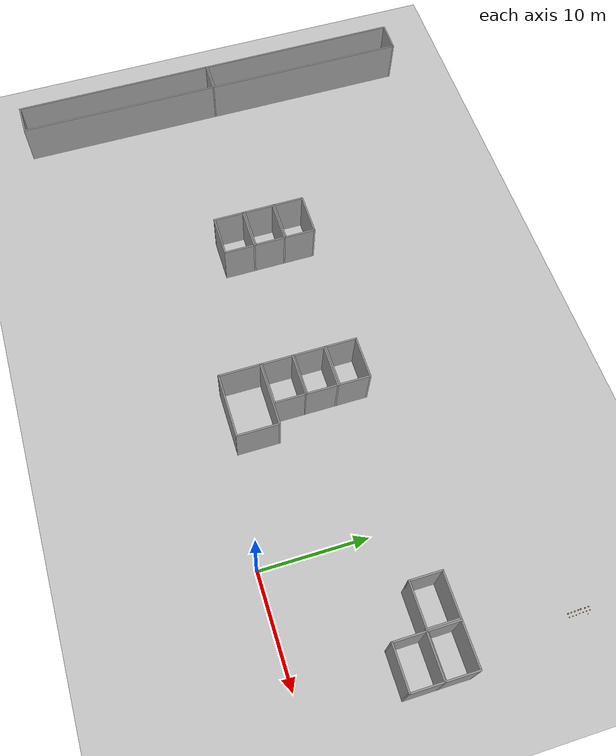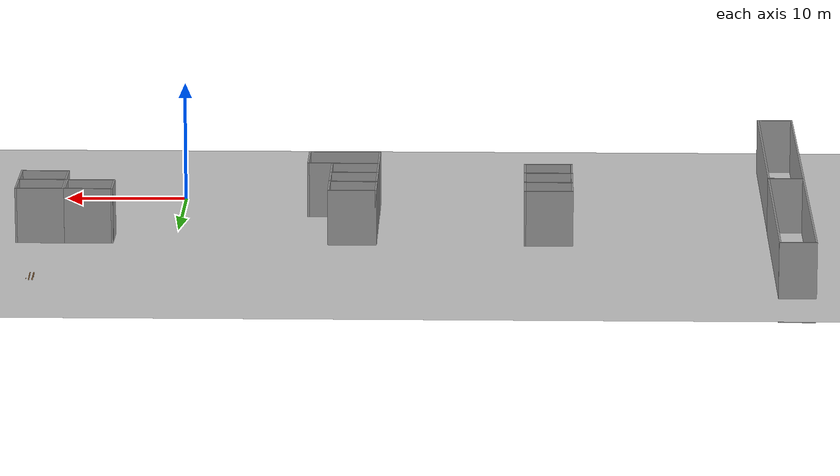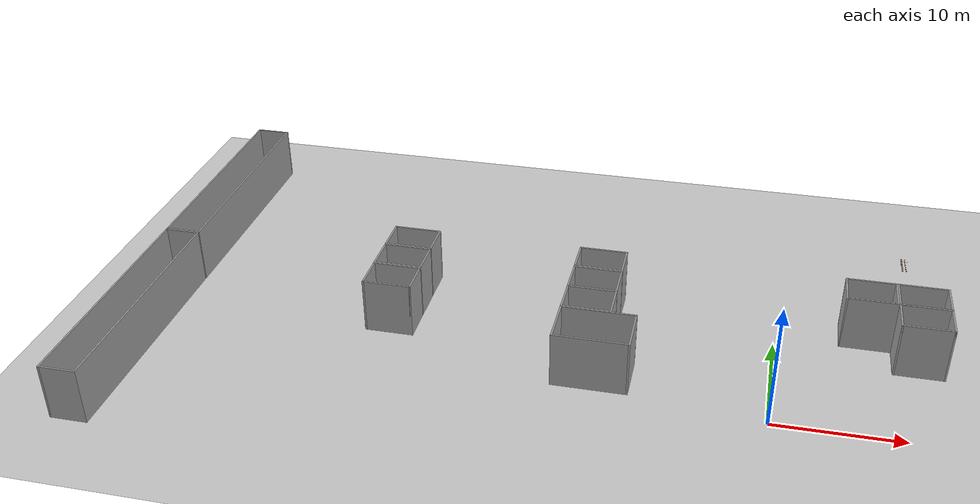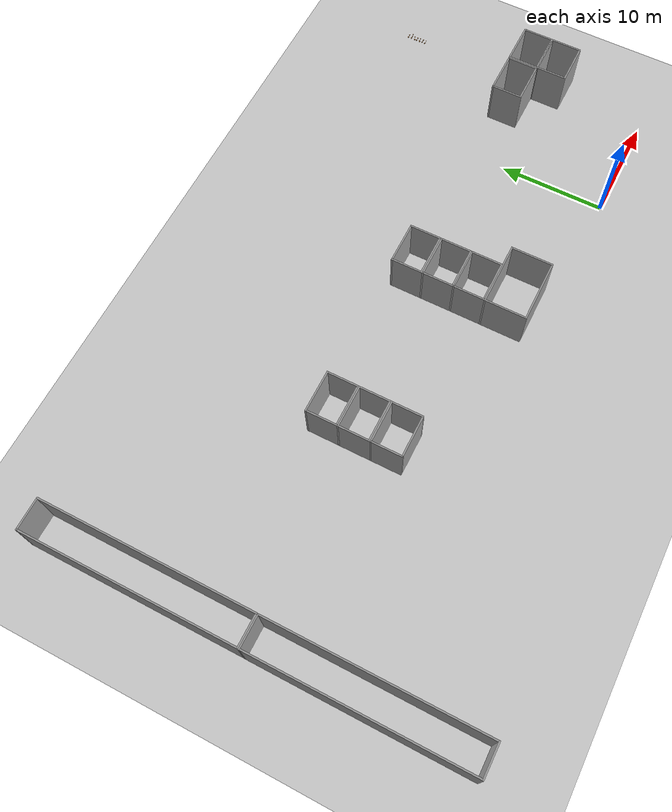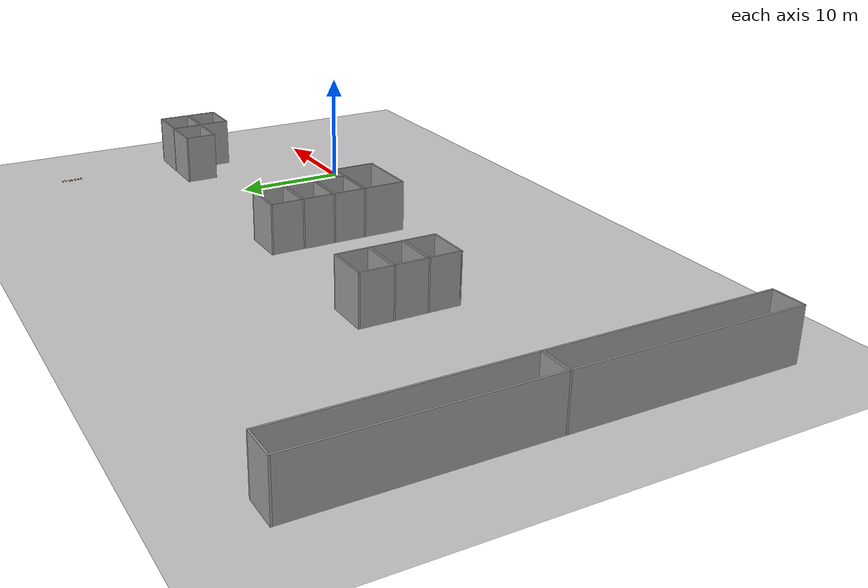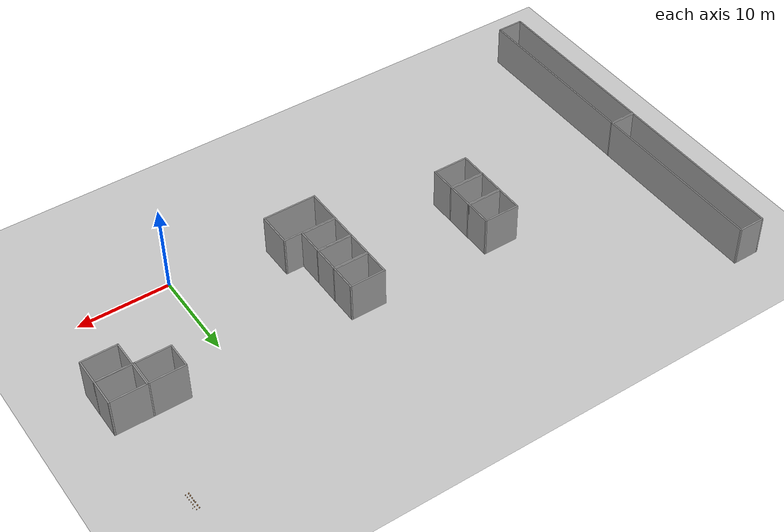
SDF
<sdf version="1.6">
 <world name="default">
  <model name="ground_plane">
   <static>1</static>
   <link name="link">
    <collision name="collision">
     <geometry><plane><normal>0 0 1</normal><size>320 320</size></plane></geometry>
     <surface>
      <contact><collide_bitmask>65535</collide_bitmask></contact>
      <friction><ode><mu>100</mu><mu2>50</mu2></ode></friction>
     </surface>
    </collision>
    <visual name="visual">
     <cast_shadows>0</cast_shadows>
     <geometry><plane><normal>0 0 1</normal><size>320 320</size></plane></geometry>
     <material>
      <script><uri>file://media/materials/scripts/gazebo.material</uri><name>Gazebo/Grey</name></script>
     </material>
    </visual>
   </link>
  </model>
  <model name="base3x4_13">
   <pose>-30.4247 6.69734 0 0 -0 0</pose>
   <link name="Wall_18">
    <collision name="Wall_18_Collision">
     <geometry><box><size>3 0.15 6.555</size></box></geometry>
     <pose>0 0 1.25 0 -0 0</pose>
    </collision>
    <visual name="Wall_18_Visual">
     <pose>0 0 1.25 0 -0 0</pose>
     <geometry><box><size>3 0.15 6.555</size></box></geometry>
     <material>
      <script><uri>file://media/materials/scripts/gazebo.material</uri><name>Gazebo/Grey</name></script>
      <ambient>1 1 1 1</ambient>
     </material>
     <meta><layer>0</layer></meta>
    </visual>
    <pose>-1.925 -0 0 0 -0 -1.5708</pose>
   </link>
   <link name="Wall_19">
    <collision name="Wall_19_Collision">
     <geometry><box><size>4 0.15 6.555</size></box></geometry>
     <pose>0 0 1.25 0 -0 0</pose>
    </collision>
    <visual name="Wall_19_Visual">
     <pose>0 0 1.25 0 -0 0</pose>
     <geometry><box><size>4 0.15 6.555</size></box></geometry>
     <material>
      <script><uri>file://media/materials/scripts/gazebo.material</uri><name>Gazebo/Grey</name></script>
      <ambient>1 1 1 1</ambient>
     </material>
     <meta><layer>0</layer></meta>
    </visual>
    <pose>-0 -1.425 0 0 -0 0</pose>
   </link>
   <link name="Wall_20">
    <collision name="Wall_20_Collision">
     <geometry><box><size>3 0.15 6.555</size></box></geometry>
     <pose>0 0 1.25 0 -0 0</pose>
    </collision>
    <visual name="Wall_20_Visual">
     <pose>0 0 1.25 0 -0 0</pose>
     <geometry><box><size>3 0.15 6.555</size></box></geometry>
     <material>
      <script><uri>file://media/materials/scripts/gazebo.material</uri><name>Gazebo/Grey</name></script>
      <ambient>1 1 1 1</ambient>
     </material>
     <meta><layer>0</layer></meta>
    </visual>
    <pose>1.925 -0 0 0 -0 1.5708</pose>
   </link>
   <link name="Wall_21">
    <collision name="Wall_21_Collision">
     <geometry><box><size>4 0.15 6.555</size></box></geometry>
     <pose>0 0 1.25 0 -0 0</pose>
    </collision>
    <visual name="Wall_21_Visual">
     <pose>0 0 1.25 0 -0 0</pose>
     <geometry><box><size>4 0.15 6.555</size></box></geometry>
     <material>
      <script><uri>file://media/materials/scripts/gazebo.material</uri><name>Gazebo/Grey</name></script>
      <ambient>1 1 1 1</ambient>
     </material>
     <meta><layer>0</layer></meta>
    </visual>
    <pose>-0 1.425 0 0 -0 3.14159</pose>
   </link>
   <static>1</static>
  </model>
  <model name="base3x4_81">
   <pose>-14.4195 6.71554 0 0 -0 0</pose>
   <link name="Wall_18">
    <collision name="Wall_18_Collision">
     <geometry><box><size>3 0.15 6.555</size></box></geometry>
     <pose>0 0 1.25 0 -0 0</pose>
    </collision>
    <visual name="Wall_18_Visual">
     <pose>0 0 1.25 0 -0 0</pose>
     <geometry><box><size>3 0.15 6.555</size></box></geometry>
     <material>
      <script><uri>file://media/materials/scripts/gazebo.material</uri><name>Gazebo/Grey</name></script>
      <ambient>1 1 1 1</ambient>
     </material>
     <meta><layer>0</layer></meta>
    </visual>
    <pose>-1.925 -0 0 0 -0 -1.5708</pose>
   </link>
   <link name="Wall_19">
    <collision name="Wall_19_Collision">
     <geometry><box><size>4 0.15 6.555</size></box></geometry>
     <pose>0 0 1.25 0 -0 0</pose>
    </collision>
    <visual name="Wall_19_Visual">
     <pose>0 0 1.25 0 -0 0</pose>
     <geometry><box><size>4 0.15 6.555</size></box></geometry>
     <material>
      <script><uri>file://media/materials/scripts/gazebo.material</uri><name>Gazebo/Grey</name></script>
      <ambient>1 1 1 1</ambient>
     </material>
     <meta><layer>0</layer></meta>
    </visual>
    <pose>-0 -1.425 0 0 -0 0</pose>
   </link>
   <link name="Wall_20">
    <collision name="Wall_20_Collision">
     <geometry><box><size>3 0.15 6.555</size></box></geometry>
     <pose>0 0 1.25 0 -0 0</pose>
    </collision>
    <visual name="Wall_20_Visual">
     <pose>0 0 1.25 0 -0 0</pose>
     <geometry><box><size>3 0.15 6.555</size></box></geometry>
     <material>
      <script><uri>file://media/materials/scripts/gazebo.material</uri><name>Gazebo/Grey</name></script>
      <ambient>1 1 1 1</ambient>
     </material>
     <meta><layer>0</layer></meta>
    </visual>
    <pose>1.925 -0 0 0 -0 1.5708</pose>
   </link>
   <link name="Wall_21">
    <collision name="Wall_21_Collision">
     <geometry><box><size>4 0.15 6.555</size></box></geometry>
     <pose>0 0 1.25 0 -0 0</pose>
    </collision>
    <visual name="Wall_21_Visual">
     <pose>0 0 1.25 0 -0 0</pose>
     <geometry><box><size>4 0.15 6.555</size></box></geometry>
     <material>
      <script><uri>file://media/materials/scripts/gazebo.material</uri><name>Gazebo/Grey</name></script>
      <ambient>1 1 1 1</ambient>
     </material>
     <meta><layer>0</layer></meta>
    </visual>
    <pose>-0 1.425 0 0 -0 3.14159</pose>
   </link>
   <static>1</static>
  </model>
  <model name="base3x4_66">
   <pose>-14.4193 9.67951 0 0 -0 0</pose>
   <link name="Wall_18">
    <collision name="Wall_18_Collision">
     <geometry><box><size>3 0.15 6.555</size></box></geometry>
     <pose>0 0 1.25 0 -0 0</pose>
    </collision>
    <visual name="Wall_18_Visual">
     <pose>0 0 1.25 0 -0 0</pose>
     <geometry><box><size>3 0.15 6.555</size></box></geometry>
     <material>
      <script><uri>file://media/materials/scripts/gazebo.material</uri><name>Gazebo/Grey</name></script>
      <ambient>1 1 1 1</ambient>
     </material>
     <meta><layer>0</layer></meta>
    </visual>
    <pose>-1.925 -0 0 0 -0 -1.5708</pose>
   </link>
   <link name="Wall_19">
    <collision name="Wall_19_Collision">
     <geometry><box><size>4 0.15 6.555</size></box></geometry>
     <pose>0 0 1.25 0 -0 0</pose>
    </collision>
    <visual name="Wall_19_Visual">
     <pose>0 0 1.25 0 -0 0</pose>
     <geometry><box><size>4 0.15 6.555</size></box></geometry>
     <material>
      <script><uri>file://media/materials/scripts/gazebo.material</uri><name>Gazebo/Grey</name></script>
      <ambient>1 1 1 1</ambient>
     </material>
     <meta><layer>0</layer></meta>
    </visual>
    <pose>-0 -1.425 0 0 -0 0</pose>
   </link>
   <link name="Wall_20">
    <collision name="Wall_20_Collision">
     <geometry><box><size>3 0.15 6.555</size></box></geometry>
     <pose>0 0 1.25 0 -0 0</pose>
    </collision>
    <visual name="Wall_20_Visual">
     <pose>0 0 1.25 0 -0 0</pose>
     <geometry><box><size>3 0.15 6.555</size></box></geometry>
     <material>
      <script><uri>file://media/materials/scripts/gazebo.material</uri><name>Gazebo/Grey</name></script>
      <ambient>1 1 1 1</ambient>
     </material>
     <meta><layer>0</layer></meta>
    </visual>
    <pose>1.925 -0 0 0 -0 1.5708</pose>
   </link>
   <link name="Wall_21">
    <collision name="Wall_21_Collision">
     <geometry><box><size>4 0.15 6.555</size></box></geometry>
     <pose>0 0 1.25 0 -0 0</pose>
    </collision>
    <visual name="Wall_21_Visual">
     <pose>0 0 1.25 0 -0 0</pose>
     <geometry><box><size>4 0.15 6.555</size></box></geometry>
     <material>
      <script><uri>file://media/materials/scripts/gazebo.material</uri><name>Gazebo/Grey</name></script>
      <ambient>1 1 1 1</ambient>
     </material>
     <meta><layer>0</layer></meta>
    </visual>
    <pose>-0 1.425 0 0 -0 3.14159</pose>
   </link>
   <static>1</static>
  </model>
  <model name="wood_cube_10cm">
   <link name="link">
    <pose>0 0 0.05 0 -0 0</pose>
    <inertial>
     <mass>0.5167</mass>
     <inertia>
      <ixx>0.000861167</ixx>
      <ixy>0</ixy>
      <ixz>0</ixz>
      <iyy>0.000861167</iyy>
      <iyz>0</iyz>
      <izz>0.000861167</izz>
     </inertia>
    </inertial>
    <collision name="collision">
     <geometry><box><size>0.1 0.1 0.1</size></box></geometry>
     <surface>
      <contact>
       <poissons_ratio>0.347</poissons_ratio>
       <elastic_modulus>8.8e+09</elastic_modulus>
       <ode><kp>100000</kp><kd>100</kd><max_vel>100</max_vel><min_depth>0.001</min_depth></ode>
      </contact>
      <friction>
       <torsional>
        <coefficient>1</coefficient>
        <use_patch_radius>0</use_patch_radius>
        <surface_radius>0.01</surface_radius>
       </torsional>
      </friction>
     </surface>
    </collision>
    <visual name="visual">
     <geometry><box><size>0.1 0.1 0.1</size></box></geometry>
     <material>
      <script><uri>file://media/materials/scripts/gazebo.material</uri><name>Gazebo/Wood</name></script>
     </material>
    </visual>
   </link>
   <pose>10.6933 23.5723 -0.001013 0 -0 0</pose>
  </model>
  <model name="wood_cube_10cm_0">
   <link name="link">
    <pose>0 0 0.05 0 -0 0</pose>
    <inertial>
     <mass>0.5167</mass>
     <inertia>
      <ixx>0.000861167</ixx>
      <ixy>0</ixy>
      <ixz>0</ixz>
      <iyy>0.000861167</iyy>
      <iyz>0</iyz>
      <izz>0.000861167</izz>
     </inertia>
    </inertial>
    <collision name="collision">
     <geometry><box><size>0.1 0.1 0.1</size></box></geometry>
     <surface>
      <contact>
       <poissons_ratio>0.347</poissons_ratio>
       <elastic_modulus>8.8e+09</elastic_modulus>
       <ode><kp>100000</kp><kd>100</kd><max_vel>100</max_vel><min_depth>0.001</min_depth></ode>
      </contact>
      <friction>
       <torsional>
        <coefficient>1</coefficient>
        <use_patch_radius>0</use_patch_radius>
        <surface_radius>0.01</surface_radius>
       </torsional>
      </friction>
     </surface>
    </collision>
    <visual name="visual">
     <geometry><box><size>0.1 0.1 0.1</size></box></geometry>
     <material>
      <script><uri>file://media/materials/scripts/gazebo.material</uri><name>Gazebo/Wood</name></script>
     </material>
    </visual>
   </link>
   <pose>10.69 23.8636 -0.001013 0 -0 0</pose>
  </model>
  <model name="wood_cube_10cm_1">
   <link name="link">
    <pose>0 0 0.05 0 -0 0</pose>
    <inertial>
     <mass>0.5167</mass>
     <inertia>
      <ixx>0.000861167</ixx>
      <ixy>0</ixy>
      <ixz>0</ixz>
      <iyy>0.000861167</iyy>
      <iyz>0</iyz>
      <izz>0.000861167</izz>
     </inertia>
    </inertial>
    <collision name="collision">
     <geometry><box><size>0.1 0.1 0.1</size></box></geometry>
     <surface>
      <contact>
       <poissons_ratio>0.347</poissons_ratio>
       <elastic_modulus>8.8e+09</elastic_modulus>
       <ode><kp>100000</kp><kd>100</kd><max_vel>100</max_vel><min_depth>0.001</min_depth></ode>
      </contact>
      <friction>
       <torsional>
        <coefficient>1</coefficient>
        <use_patch_radius>0</use_patch_radius>
        <surface_radius>0.01</surface_radius>
       </torsional>
      </friction>
     </surface>
    </collision>
    <visual name="visual">
     <geometry><box><size>0.1 0.1 0.1</size></box></geometry>
     <material>
      <script><uri>file://media/materials/scripts/gazebo.material</uri><name>Gazebo/Wood</name></script>
     </material>
    </visual>
   </link>
   <pose>10.6798 24.1748 -0.001013 0 -0 0</pose>
  </model>
  <model name="wood_cube_10cm_2">
   <link name="link">
    <pose>0 0 0.05 0 -0 0</pose>
    <inertial>
     <mass>0.5167</mass>
     <inertia>
      <ixx>0.000861167</ixx>
      <ixy>0</ixy>
      <ixz>0</ixz>
      <iyy>0.000861167</iyy>
      <iyz>0</iyz>
      <izz>0.000861167</izz>
     </inertia>
    </inertial>
    <collision name="collision">
     <geometry><box><size>0.1 0.1 0.1</size></box></geometry>
     <surface>
      <contact>
       <poissons_ratio>0.347</poissons_ratio>
       <elastic_modulus>8.8e+09</elastic_modulus>
       <ode><kp>100000</kp><kd>100</kd><max_vel>100</max_vel><min_depth>0.001</min_depth></ode>
      </contact>
      <friction>
       <torsional>
        <coefficient>1</coefficient>
        <use_patch_radius>0</use_patch_radius>
        <surface_radius>0.01</surface_radius>
       </torsional>
      </friction>
     </surface>
    </collision>
    <visual name="visual">
     <geometry><box><size>0.1 0.1 0.1</size></box></geometry>
     <material>
      <script><uri>file://media/materials/scripts/gazebo.material</uri><name>Gazebo/Wood</name></script>
     </material>
    </visual>
   </link>
   <pose>10.676 24.5061 -0.001013 0 -0 0</pose>
  </model>
  <model name="wood_cube_10cm_3">
   <link name="link">
    <pose>0 0 0.05 0 -0 0</pose>
    <inertial>
     <mass>0.5167</mass>
     <inertia>
      <ixx>0.000861167</ixx>
      <ixy>0</ixy>
      <ixz>0</ixz>
      <iyy>0.000861167</iyy>
      <iyz>0</iyz>
      <izz>0.000861167</izz>
     </inertia>
    </inertial>
    <collision name="collision">
     <geometry><box><size>0.1 0.1 0.1</size></box></geometry>
     <surface>
      <contact>
       <poissons_ratio>0.347</poissons_ratio>
       <elastic_modulus>8.8e+09</elastic_modulus>
       <ode><kp>100000</kp><kd>100</kd><max_vel>100</max_vel><min_depth>0.001</min_depth></ode>
      </contact>
      <friction>
       <torsional>
        <coefficient>1</coefficient>
        <use_patch_radius>0</use_patch_radius>
        <surface_radius>0.01</surface_radius>
       </torsional>
      </friction>
     </surface>
    </collision>
    <visual name="visual">
     <geometry><box><size>0.1 0.1 0.1</size></box></geometry>
     <material>
      <script><uri>file://media/materials/scripts/gazebo.material</uri><name>Gazebo/Wood</name></script>
     </material>
    </visual>
   </link>
   <pose>10.6607 24.7274 -0.001013 0 0 -1.09026</pose>
  </model>
  <model name="wood_cube_10cm_4">
   <link name="link">
    <pose>0 0 0.05 0 -0 0</pose>
    <inertial>
     <mass>0.5167</mass>
     <inertia>
      <ixx>0.000861167</ixx>
      <ixy>0</ixy>
      <ixz>0</ixz>
      <iyy>0.000861167</iyy>
      <iyz>0</iyz>
      <izz>0.000861167</izz>
     </inertia>
    </inertial>
    <collision name="collision">
     <geometry><box><size>0.1 0.1 0.1</size></box></geometry>
     <surface>
      <contact>
       <poissons_ratio>0.347</poissons_ratio>
       <elastic_modulus>8.8e+09</elastic_modulus>
       <ode><kp>100000</kp><kd>100</kd><max_vel>100</max_vel><min_depth>0.001</min_depth></ode>
      </contact>
      <friction>
       <torsional>
        <coefficient>1</coefficient>
        <use_patch_radius>0</use_patch_radius>
        <surface_radius>0.01</surface_radius>
       </torsional>
      </friction>
     </surface>
    </collision>
    <visual name="visual">
     <geometry><box><size>0.1 0.1 0.1</size></box></geometry>
     <material>
      <script><uri>file://media/materials/scripts/gazebo.material</uri><name>Gazebo/Wood</name></script>
     </material>
    </visual>
   </link>
   <pose>10.6691 25.1156 -0.001013 0 -0 0</pose>
  </model>
  <model name="wood_cube_10cm_5">
   <link name="link">
    <pose>0 0 0.05 0 -0 0</pose>
    <inertial>
     <mass>0.5167</mass>
     <inertia>
      <ixx>0.000861167</ixx>
      <ixy>0</ixy>
      <ixz>0</ixz>
      <iyy>0.000861167</iyy>
      <iyz>0</iyz>
      <izz>0.000861167</izz>
     </inertia>
    </inertial>
    <collision name="collision">
     <geometry><box><size>0.1 0.1 0.1</size></box></geometry>
     <surface>
      <contact>
       <poissons_ratio>0.347</poissons_ratio>
       <elastic_modulus>8.8e+09</elastic_modulus>
       <ode><kp>100000</kp><kd>100</kd><max_vel>100</max_vel><min_depth>0.001</min_depth></ode>
      </contact>
      <friction>
       <torsional>
        <coefficient>1</coefficient>
        <use_patch_radius>0</use_patch_radius>
        <surface_radius>0.01</surface_radius>
       </torsional>
      </friction>
     </surface>
    </collision>
    <visual name="visual">
     <geometry><box><size>0.1 0.1 0.1</size></box></geometry>
     <material>
      <script><uri>file://media/materials/scripts/gazebo.material</uri><name>Gazebo/Wood</name></script>
     </material>
    </visual>
   </link>
   <pose>10.6522 25.4397 -0.001013 0 -0 0</pose>
  </model>
  <model name="wood_cube_7_5cm">
   <link name="link">
    <pose>0 0 0.0375 0 -0 0</pose>
    <inertial>
     <mass>0.2249</mass>
     <inertia>
      <ixx>0.000210844</ixx>
      <ixy>0</ixy>
      <ixz>0</ixz>
      <iyy>0.000210844</iyy>
      <iyz>0</iyz>
      <izz>0.000210844</izz>
     </inertia>
    </inertial>
    <collision name="collision">
     <geometry><box><size>0.075 0.075 0.075</size></box></geometry>
     <surface>
      <contact>
       <poissons_ratio>0.347</poissons_ratio>
       <elastic_modulus>8.8e+09</elastic_modulus>
       <ode><kp>100000</kp><kd>100</kd><max_vel>100</max_vel><min_depth>0.001</min_depth></ode>
      </contact>
      <friction>
       <torsional>
        <coefficient>1</coefficient>
        <use_patch_radius>0</use_patch_radius>
        <surface_radius>0.01</surface_radius>
       </torsional>
      </friction>
     </surface>
    </collision>
    <visual name="visual">
     <geometry><box><size>0.075 0.075 0.075</size></box></geometry>
     <material>
      <script><uri>file://media/materials/scripts/gazebo.material</uri><name>Gazebo/Wood</name></script>
     </material>
    </visual>
   </link>
   <pose>11.0047 23.569 -0.001006 0 -0 0</pose>
  </model>
  <model name="wood_cube_7_5cm_0">
   <link name="link">
    <pose>0 0 0.0375 0 -0 0</pose>
    <inertial>
     <mass>0.2249</mass>
     <inertia>
      <ixx>0.000210844</ixx>
      <ixy>0</ixy>
      <ixz>0</ixz>
      <iyy>0.000210844</iyy>
      <iyz>0</iyz>
      <izz>0.000210844</izz>
     </inertia>
    </inertial>
    <collision name="collision">
     <geometry><box><size>0.075 0.075 0.075</size></box></geometry>
     <surface>
      <contact>
       <poissons_ratio>0.347</poissons_ratio>
       <elastic_modulus>8.8e+09</elastic_modulus>
       <ode><kp>100000</kp><kd>100</kd><max_vel>100</max_vel><min_depth>0.001</min_depth></ode>
      </contact>
      <friction>
       <torsional>
        <coefficient>1</coefficient>
        <use_patch_radius>0</use_patch_radius>
        <surface_radius>0.01</surface_radius>
       </torsional>
      </friction>
     </surface>
    </collision>
    <visual name="visual">
     <geometry><box><size>0.075 0.075 0.075</size></box></geometry>
     <material>
      <script><uri>file://media/materials/scripts/gazebo.material</uri><name>Gazebo/Wood</name></script>
     </material>
    </visual>
   </link>
   <pose>10.9881 23.8737 -0.001006 0 -0 0</pose>
  </model>
  <model name="wood_cube_7_5cm_1">
   <link name="link">
    <pose>0 0 0.0375 0 -0 0</pose>
    <inertial>
     <mass>0.2249</mass>
     <inertia>
      <ixx>0.000210844</ixx>
      <ixy>0</ixy>
      <ixz>0</ixz>
      <iyy>0.000210844</iyy>
      <iyz>0</iyz>
      <izz>0.000210844</izz>
     </inertia>
    </inertial>
    <collision name="collision">
     <geometry><box><size>0.075 0.075 0.075</size></box></geometry>
     <surface>
      <contact>
       <poissons_ratio>0.347</poissons_ratio>
       <elastic_modulus>8.8e+09</elastic_modulus>
       <ode><kp>100000</kp><kd>100</kd><max_vel>100</max_vel><min_depth>0.001</min_depth></ode>
      </contact>
      <friction>
       <torsional>
        <coefficient>1</coefficient>
        <use_patch_radius>0</use_patch_radius>
        <surface_radius>0.01</surface_radius>
       </torsional>
      </friction>
     </surface>
    </collision>
    <visual name="visual">
     <geometry><box><size>0.075 0.075 0.075</size></box></geometry>
     <material>
      <script><uri>file://media/materials/scripts/gazebo.material</uri><name>Gazebo/Wood</name></script>
     </material>
    </visual>
   </link>
   <pose>10.9777 24.1915 -0.001006 0 -0 0</pose>
  </model>
  <model name="wood_cube_7_5cm_2">
   <link name="link">
    <pose>0 0 0.0375 0 -0 0</pose>
    <inertial>
     <mass>0.2249</mass>
     <inertia>
      <ixx>0.000210844</ixx>
      <ixy>0</ixy>
      <ixz>0</ixz>
      <iyy>0.000210844</iyy>
      <iyz>0</iyz>
      <izz>0.000210844</izz>
     </inertia>
    </inertial>
    <collision name="collision">
     <geometry><box><size>0.075 0.075 0.075</size></box></geometry>
     <surface>
      <contact>
       <poissons_ratio>0.347</poissons_ratio>
       <elastic_modulus>8.8e+09</elastic_modulus>
       <ode><kp>100000</kp><kd>100</kd><max_vel>100</max_vel><min_depth>0.001</min_depth></ode>
      </contact>
      <friction>
       <torsional>
        <coefficient>1</coefficient>
        <use_patch_radius>0</use_patch_radius>
        <surface_radius>0.01</surface_radius>
       </torsional>
      </friction>
     </surface>
    </collision>
    <visual name="visual">
     <geometry><box><size>0.075 0.075 0.075</size></box></geometry>
     <material>
      <script><uri>file://media/materials/scripts/gazebo.material</uri><name>Gazebo/Wood</name></script>
     </material>
    </visual>
   </link>
   <pose>10.9676 24.5094 -0.001006 0 -0 0</pose>
  </model>
  <model name="wood_cube_7_5cm_3">
   <link name="link">
    <pose>0 0 0.0375 0 -0 0</pose>
    <inertial>
     <mass>0.2249</mass>
     <inertia>
      <ixx>0.000210844</ixx>
      <ixy>0</ixy>
      <ixz>0</ixz>
      <iyy>0.000210844</iyy>
      <iyz>0</iyz>
      <izz>0.000210844</izz>
     </inertia>
    </inertial>
    <collision name="collision">
     <geometry><box><size>0.075 0.075 0.075</size></box></geometry>
     <surface>
      <contact>
       <poissons_ratio>0.347</poissons_ratio>
       <elastic_modulus>8.8e+09</elastic_modulus>
       <ode><kp>100000</kp><kd>100</kd><max_vel>100</max_vel><min_depth>0.001</min_depth></ode>
      </contact>
      <friction>
       <torsional>
        <coefficient>1</coefficient>
        <use_patch_radius>0</use_patch_radius>
        <surface_radius>0.01</surface_radius>
       </torsional>
      </friction>
     </surface>
    </collision>
    <visual name="visual">
     <geometry><box><size>0.075 0.075 0.075</size></box></geometry>
     <material>
      <script><uri>file://media/materials/scripts/gazebo.material</uri><name>Gazebo/Wood</name></script>
     </material>
    </visual>
   </link>
   <pose>10.9506 24.8272 -0.001006 0 -0 1.5e-05</pose>
  </model>
  <model name="wood_cube_7_5cm_4">
   <link name="link">
    <pose>0 0 0.0375 0 -0 0</pose>
    <inertial>
     <mass>0.2249</mass>
     <inertia>
      <ixx>0.000210844</ixx>
      <ixy>0</ixy>
      <ixz>0</ixz>
      <iyy>0.000210844</iyy>
      <iyz>0</iyz>
      <izz>0.000210844</izz>
     </inertia>
    </inertial>
    <collision name="collision">
     <geometry><box><size>0.075 0.075 0.075</size></box></geometry>
     <surface>
      <contact>
       <poissons_ratio>0.347</poissons_ratio>
       <elastic_modulus>8.8e+09</elastic_modulus>
       <ode><kp>100000</kp><kd>100</kd><max_vel>100</max_vel><min_depth>0.001</min_depth></ode>
      </contact>
      <friction>
       <torsional>
        <coefficient>1</coefficient>
        <use_patch_radius>0</use_patch_radius>
        <surface_radius>0.01</surface_radius>
       </torsional>
      </friction>
     </surface>
    </collision>
    <visual name="visual">
     <geometry><box><size>0.075 0.075 0.075</size></box></geometry>
     <material>
      <script><uri>file://media/materials/scripts/gazebo.material</uri><name>Gazebo/Wood</name></script>
     </material>
    </visual>
   </link>
   <pose>10.9473 25.1252 -0.001006 0 -0 5e-06</pose>
  </model>
  <model name="wood_cube_7_5cm_5">
   <link name="link">
    <pose>0 0 0.0375 0 -0 0</pose>
    <inertial>
     <mass>0.2249</mass>
     <inertia>
      <ixx>0.000210844</ixx>
      <ixy>0</ixy>
      <ixz>0</ixz>
      <iyy>0.000210844</iyy>
      <iyz>0</iyz>
      <izz>0.000210844</izz>
     </inertia>
    </inertial>
    <collision name="collision">
     <geometry><box><size>0.075 0.075 0.075</size></box></geometry>
     <surface>
      <contact>
       <poissons_ratio>0.347</poissons_ratio>
       <elastic_modulus>8.8e+09</elastic_modulus>
       <ode><kp>100000</kp><kd>100</kd><max_vel>100</max_vel><min_depth>0.001</min_depth></ode>
      </contact>
      <friction>
       <torsional>
        <coefficient>1</coefficient>
        <use_patch_radius>0</use_patch_radius>
        <surface_radius>0.01</surface_radius>
       </torsional>
      </friction>
     </surface>
    </collision>
    <visual name="visual">
     <geometry><box><size>0.075 0.075 0.075</size></box></geometry>
     <material>
      <script><uri>file://media/materials/scripts/gazebo.material</uri><name>Gazebo/Wood</name></script>
     </material>
    </visual>
   </link>
   <pose>10.9436 25.4497 -0.001006 0 -0 0</pose>
  </model>
  <model name="wood_cube_5cm_4">
   <link name="link">
    <pose>0 0 0.025 0 -0 0</pose>
    <inertial>
     <mass>0.0565</mass>
     <inertia>
      <ixx>2.35417e-05</ixx>
      <ixy>0</ixy>
      <ixz>0</ixz>
      <iyy>2.35417e-05</iyy>
      <iyz>0</iyz>
      <izz>2.35417e-05</izz>
     </inertia>
    </inertial>
    <collision name="collision">
     <geometry><box><size>0.05 0.05 0.05</size></box></geometry>
     <surface>
      <contact>
       <poissons_ratio>0.347</poissons_ratio>
       <elastic_modulus>8.8e+09</elastic_modulus>
       <ode><kp>100000</kp><kd>1</kd><max_vel>1</max_vel><min_depth>0.001</min_depth></ode>
      </contact>
      <friction>
       <torsional>
        <coefficient>1</coefficient>
        <use_patch_radius>0</use_patch_radius>
        <surface_radius>0.05</surface_radius>
       </torsional>
      </friction>
     </surface>
    </collision>
    <visual name="visual">
     <geometry><box><size>0.05 0.05 0.05</size></box></geometry>
     <material>
      <script><uri>file://media/materials/scripts/gazebo.material</uri><name>Gazebo/Wood</name></script>
     </material>
    </visual>
   </link>
   <pose>11.1789 25.1545 -0.001001 0 -0 0</pose>
  </model>
  <model name="base3x4_4">
   <pose>-30.4282 9.69605 0 0 -0 0</pose>
   <link name="Wall_18">
    <collision name="Wall_18_Collision">
     <geometry><box><size>3 0.15 6.555</size></box></geometry>
     <pose>0 0 1.25 0 -0 0</pose>
    </collision>
    <visual name="Wall_18_Visual">
     <pose>0 0 1.25 0 -0 0</pose>
     <geometry><box><size>3 0.15 6.555</size></box></geometry>
     <material>
      <script><uri>file://media/materials/scripts/gazebo.material</uri><name>Gazebo/Grey</name></script>
      <ambient>1 1 1 1</ambient>
     </material>
     <meta><layer>0</layer></meta>
    </visual>
    <pose>-1.925 -0 0 0 -0 -1.5708</pose>
   </link>
   <link name="Wall_19">
    <collision name="Wall_19_Collision">
     <geometry><box><size>4 0.15 6.555</size></box></geometry>
     <pose>0 0 1.25 0 -0 0</pose>
    </collision>
    <visual name="Wall_19_Visual">
     <pose>0 0 1.25 0 -0 0</pose>
     <geometry><box><size>4 0.15 6.555</size></box></geometry>
     <material>
      <script><uri>file://media/materials/scripts/gazebo.material</uri><name>Gazebo/Grey</name></script>
      <ambient>1 1 1 1</ambient>
     </material>
     <meta><layer>0</layer></meta>
    </visual>
    <pose>-0 -1.425 0 0 -0 0</pose>
   </link>
   <link name="Wall_20">
    <collision name="Wall_20_Collision">
     <geometry><box><size>3 0.15 6.555</size></box></geometry>
     <pose>0 0 1.25 0 -0 0</pose>
    </collision>
    <visual name="Wall_20_Visual">
     <pose>0 0 1.25 0 -0 0</pose>
     <geometry><box><size>3 0.15 6.555</size></box></geometry>
     <material>
      <script><uri>file://media/materials/scripts/gazebo.material</uri><name>Gazebo/Grey</name></script>
      <ambient>1 1 1 1</ambient>
     </material>
     <meta><layer>0</layer></meta>
    </visual>
    <pose>1.925 -0 0 0 -0 1.5708</pose>
   </link>
   <link name="Wall_21">
    <collision name="Wall_21_Collision">
     <geometry><box><size>4 0.15 6.555</size></box></geometry>
     <pose>0 0 1.25 0 -0 0</pose>
    </collision>
    <visual name="Wall_21_Visual">
     <pose>0 0 1.25 0 -0 0</pose>
     <geometry><box><size>4 0.15 6.555</size></box></geometry>
     <material>
      <script><uri>file://media/materials/scripts/gazebo.material</uri><name>Gazebo/Grey</name></script>
      <ambient>1 1 1 1</ambient>
     </material>
     <meta><layer>0</layer></meta>
    </visual>
    <pose>-0 1.425 0 0 -0 3.14159</pose>
   </link>
   <static>1</static>
  </model>
  <model name="base3x4_11">
   <pose>-14.4193 12.679 0 0 -0 0</pose>
   <link name="Wall_18">
    <collision name="Wall_18_Collision">
     <geometry><box><size>3 0.15 6.555</size></box></geometry>
     <pose>0 0 1.25 0 -0 0</pose>
    </collision>
    <visual name="Wall_18_Visual">
     <pose>0 0 1.25 0 -0 0</pose>
     <geometry><box><size>3 0.15 6.555</size></box></geometry>
     <material>
      <script><uri>file://media/materials/scripts/gazebo.material</uri><name>Gazebo/Grey</name></script>
      <ambient>1 1 1 1</ambient>
     </material>
     <meta><layer>0</layer></meta>
    </visual>
    <pose>-1.925 -0 0 0 -0 -1.5708</pose>
   </link>
   <link name="Wall_19">
    <collision name="Wall_19_Collision">
     <geometry><box><size>4 0.15 6.555</size></box></geometry>
     <pose>0 0 1.25 0 -0 0</pose>
    </collision>
    <visual name="Wall_19_Visual">
     <pose>0 0 1.25 0 -0 0</pose>
     <geometry><box><size>4 0.15 6.555</size></box></geometry>
     <material>
      <script><uri>file://media/materials/scripts/gazebo.material</uri><name>Gazebo/Grey</name></script>
      <ambient>1 1 1 1</ambient>
     </material>
     <meta><layer>0</layer></meta>
    </visual>
    <pose>-0 -1.425 0 0 -0 0</pose>
   </link>
   <link name="Wall_20">
    <collision name="Wall_20_Collision">
     <geometry><box><size>3 0.15 6.555</size></box></geometry>
     <pose>0 0 1.25 0 -0 0</pose>
    </collision>
    <visual name="Wall_20_Visual">
     <pose>0 0 1.25 0 -0 0</pose>
     <geometry><box><size>3 0.15 6.555</size></box></geometry>
     <material>
      <script><uri>file://media/materials/scripts/gazebo.material</uri><name>Gazebo/Grey</name></script>
      <ambient>1 1 1 1</ambient>
     </material>
     <meta><layer>0</layer></meta>
    </visual>
    <pose>1.925 -0 0 0 -0 1.5708</pose>
   </link>
   <link name="Wall_21">
    <collision name="Wall_21_Collision">
     <geometry><box><size>4 0.15 6.555</size></box></geometry>
     <pose>0 0 1.25 0 -0 0</pose>
    </collision>
    <visual name="Wall_21_Visual">
     <pose>0 0 1.25 0 -0 0</pose>
     <geometry><box><size>4 0.15 6.555</size></box></geometry>
     <material>
      <script><uri>file://media/materials/scripts/gazebo.material</uri><name>Gazebo/Grey</name></script>
      <ambient>1 1 1 1</ambient>
     </material>
     <meta><layer>0</layer></meta>
    </visual>
    <pose>-0 1.425 0 0 -0 3.14159</pose>
   </link>
   <static>1</static>
  </model>
  <model name="base3x4_20">
   <pose>-30.4266 12.6856 0 0 -0 0</pose>
   <link name="Wall_18">
    <collision name="Wall_18_Collision">
     <geometry><box><size>3 0.15 6.555</size></box></geometry>
     <pose>0 0 1.25 0 -0 0</pose>
    </collision>
    <visual name="Wall_18_Visual">
     <pose>0 0 1.25 0 -0 0</pose>
     <geometry><box><size>3 0.15 6.555</size></box></geometry>
     <material>
      <script><uri>file://media/materials/scripts/gazebo.material</uri><name>Gazebo/Grey</name></script>
      <ambient>1 1 1 1</ambient>
     </material>
     <meta><layer>0</layer></meta>
    </visual>
    <pose>-1.925 -0 0 0 -0 -1.5708</pose>
   </link>
   <link name="Wall_19">
    <collision name="Wall_19_Collision">
     <geometry><box><size>4 0.15 6.555</size></box></geometry>
     <pose>0 0 1.25 0 -0 0</pose>
    </collision>
    <visual name="Wall_19_Visual">
     <pose>0 0 1.25 0 -0 0</pose>
     <geometry><box><size>4 0.15 6.555</size></box></geometry>
     <material>
      <script><uri>file://media/materials/scripts/gazebo.material</uri><name>Gazebo/Grey</name></script>
      <ambient>1 1 1 1</ambient>
     </material>
     <meta><layer>0</layer></meta>
    </visual>
    <pose>-0 -1.425 0 0 -0 0</pose>
   </link>
   <link name="Wall_20">
    <collision name="Wall_20_Collision">
     <geometry><box><size>3 0.15 6.555</size></box></geometry>
     <pose>0 0 1.25 0 -0 0</pose>
    </collision>
    <visual name="Wall_20_Visual">
     <pose>0 0 1.25 0 -0 0</pose>
     <geometry><box><size>3 0.15 6.555</size></box></geometry>
     <material>
      <script><uri>file://media/materials/scripts/gazebo.material</uri><name>Gazebo/Grey</name></script>
      <ambient>1 1 1 1</ambient>
     </material>
     <meta><layer>0</layer></meta>
    </visual>
    <pose>1.925 -0 0 0 -0 1.5708</pose>
   </link>
   <link name="Wall_21">
    <collision name="Wall_21_Collision">
     <geometry><box><size>4 0.15 6.555</size></box></geometry>
     <pose>0 0 1.25 0 -0 0</pose>
    </collision>
    <visual name="Wall_21_Visual">
     <pose>0 0 1.25 0 -0 0</pose>
     <geometry><box><size>4 0.15 6.555</size></box></geometry>
     <material>
      <script><uri>file://media/materials/scripts/gazebo.material</uri><name>Gazebo/Grey</name></script>
      <ambient>1 1 1 1</ambient>
     </material>
     <meta><layer>0</layer></meta>
    </visual>
    <pose>-0 1.425 0 0 -0 3.14159</pose>
   </link>
   <static>1</static>
  </model>
  <model name="base20x3_clone_0">
   <pose>-49.904 19.5402 0 0 -0 0</pose>
   <link name="Wall_21">
    <collision name="Wall_21_Collision">
     <geometry><box><size>20 0.15 6.555</size></box></geometry>
     <pose>0 0 1.25 0 -0 0</pose>
    </collision>
    <visual name="Wall_21_Visual">
     <pose>0 0 1.25 0 -0 0</pose>
     <geometry><box><size>20 0.15 6.555</size></box></geometry>
     <material>
      <script><uri>file://media/materials/scripts/gazebo.material</uri><name>Gazebo/Grey</name></script>
      <ambient>1 1 1 1</ambient>
     </material>
     <meta><layer>0</layer></meta>
    </visual>
    <pose>-1.425 -0 0 0 -0 -1.5708</pose>
   </link>
   <link name="Wall_22">
    <collision name="Wall_22_Collision">
     <geometry><box><size>3 0.15 6.555</size></box></geometry>
     <pose>0 0 1.25 0 -0 0</pose>
    </collision>
    <visual name="Wall_22_Visual">
     <pose>0 0 1.25 0 -0 0</pose>
     <geometry><box><size>3 0.15 6.555</size></box></geometry>
     <material>
      <script><uri>file://media/materials/scripts/gazebo.material</uri><name>Gazebo/Grey</name></script>
      <ambient>1 1 1 1</ambient>
     </material>
     <meta><layer>0</layer></meta>
    </visual>
    <pose>-0 -9.925 0 0 -0 0</pose>
   </link>
   <link name="Wall_23">
    <collision name="Wall_23_Collision">
     <geometry><box><size>20 0.15 6.555</size></box></geometry>
     <pose>0 0 1.25 0 -0 0</pose>
    </collision>
    <visual name="Wall_23_Visual">
     <pose>0 0 1.25 0 -0 0</pose>
     <geometry><box><size>20 0.15 6.555</size></box></geometry>
     <material>
      <script><uri>file://media/materials/scripts/gazebo.material</uri><name>Gazebo/Grey</name></script>
      <ambient>1 1 1 1</ambient>
     </material>
     <meta><layer>0</layer></meta>
    </visual>
    <pose>1.425 -0 0 0 -0 1.5708</pose>
   </link>
   <link name="Wall_24">
    <collision name="Wall_24_Collision">
     <geometry><box><size>3 0.15 6.555</size></box></geometry>
     <pose>0 0 1.25 0 -0 0</pose>
    </collision>
    <visual name="Wall_24_Visual">
     <pose>0 0 1.25 0 -0 0</pose>
     <geometry><box><size>3 0.15 6.555</size></box></geometry>
     <material>
      <script><uri>file://media/materials/scripts/gazebo.material</uri><name>Gazebo/Grey</name></script>
      <ambient>1 1 1 1</ambient>
     </material>
     <meta><layer>0</layer></meta>
    </visual>
    <pose>-0 9.925 0 0 -0 3.14159</pose>
   </link>
   <static>1</static>
  </model>
  <model name="base20x3_clone_1">
   <pose>-49.9148 -0.440051 0 0 -0 0</pose>
   <link name="Wall_21">
    <collision name="Wall_21_Collision">
     <geometry><box><size>20 0.15 6.555</size></box></geometry>
     <pose>0 0 1.25 0 -0 0</pose>
    </collision>
    <visual name="Wall_21_Visual">
     <pose>0 0 1.25 0 -0 0</pose>
     <geometry><box><size>20 0.15 6.555</size></box></geometry>
     <material>
      <script><uri>file://media/materials/scripts/gazebo.material</uri><name>Gazebo/Grey</name></script>
      <ambient>1 1 1 1</ambient>
     </material>
     <meta><layer>0</layer></meta>
    </visual>
    <pose>-1.425 -0 0 0 -0 -1.5708</pose>
   </link>
   <link name="Wall_22">
    <collision name="Wall_22_Collision">
     <geometry><box><size>3 0.15 6.555</size></box></geometry>
     <pose>0 0 1.25 0 -0 0</pose>
    </collision>
    <visual name="Wall_22_Visual">
     <pose>0 0 1.25 0 -0 0</pose>
     <geometry><box><size>3 0.15 6.555</size></box></geometry>
     <material>
      <script><uri>file://media/materials/scripts/gazebo.material</uri><name>Gazebo/Grey</name></script>
      <ambient>1 1 1 1</ambient>
     </material>
     <meta><layer>0</layer></meta>
    </visual>
    <pose>-0 -9.925 0 0 -0 0</pose>
   </link>
   <link name="Wall_23">
    <collision name="Wall_23_Collision">
     <geometry><box><size>20 0.15 6.555</size></box></geometry>
     <pose>0 0 1.25 0 -0 0</pose>
    </collision>
    <visual name="Wall_23_Visual">
     <pose>0 0 1.25 0 -0 0</pose>
     <geometry><box><size>20 0.15 6.555</size></box></geometry>
     <material>
      <script><uri>file://media/materials/scripts/gazebo.material</uri><name>Gazebo/Grey</name></script>
      <ambient>1 1 1 1</ambient>
     </material>
     <meta><layer>0</layer></meta>
    </visual>
    <pose>1.425 -0 0 0 -0 1.5708</pose>
   </link>
   <link name="Wall_24">
    <collision name="Wall_24_Collision">
     <geometry><box><size>3 0.15 6.555</size></box></geometry>
     <pose>0 0 1.25 0 -0 0</pose>
    </collision>
    <visual name="Wall_24_Visual">
     <pose>0 0 1.25 0 -0 0</pose>
     <geometry><box><size>3 0.15 6.555</size></box></geometry>
     <material>
      <script><uri>file://media/materials/scripts/gazebo.material</uri><name>Gazebo/Grey</name></script>
      <ambient>1 1 1 1</ambient>
     </material>
     <meta><layer>0</layer></meta>
    </visual>
    <pose>-0 9.925 0 0 -0 3.14159</pose>
   </link>
   <static>1</static>
  </model>
  <model name="base4x6_10_clone_0_clone_0">
   <pose>-13.4301 3.24236 0 0 -0 0</pose>
   <link name="Wall_23">
    <collision name="Wall_23_Collision">
     <geometry><box><size>4 0.15 6.555</size></box></geometry>
     <pose>0 0 1.25 0 -0 0</pose>
    </collision>
    <visual name="Wall_23_Visual">
     <pose>0 0 1.25 0 -0 0</pose>
     <geometry><box><size>4 0.15 6.555</size></box></geometry>
     <material>
      <script><uri>file://media/materials/scripts/gazebo.material</uri><name>Gazebo/Grey</name></script>
      <ambient>1 1 1 1</ambient>
     </material>
     <meta><layer>0</layer></meta>
    </visual>
    <pose>-2.925 0 0 0 -0 -1.5708</pose>
   </link>
   <link name="Wall_24">
    <collision name="Wall_24_Collision">
     <geometry><box><size>6 0.15 6.555</size></box></geometry>
     <pose>0 0 1.25 0 -0 0</pose>
    </collision>
    <visual name="Wall_24_Visual">
     <pose>0 0 1.25 0 -0 0</pose>
     <geometry><box><size>6 0.15 6.555</size></box></geometry>
     <material>
      <script><uri>file://media/materials/scripts/gazebo.material</uri><name>Gazebo/Grey</name></script>
      <ambient>1 1 1 1</ambient>
     </material>
     <meta><layer>0</layer></meta>
    </visual>
    <pose>-0 -1.925 0 0 -0 0</pose>
   </link>
   <link name="Wall_25">
    <collision name="Wall_25_Collision">
     <geometry><box><size>4 0.15 6.555</size></box></geometry>
     <pose>0 0 1.25 0 -0 0</pose>
    </collision>
    <visual name="Wall_25_Visual">
     <pose>0 0 1.25 0 -0 0</pose>
     <geometry><box><size>4 0.15 6.555</size></box></geometry>
     <material>
      <script><uri>file://media/materials/scripts/gazebo.material</uri><name>Gazebo/Grey</name></script>
      <ambient>1 1 1 1</ambient>
     </material>
     <meta><layer>0</layer></meta>
    </visual>
    <pose>2.925 0 0 0 -0 1.5708</pose>
   </link>
   <link name="Wall_26">
    <collision name="Wall_26_Collision">
     <geometry><box><size>6 0.15 6.555</size></box></geometry>
     <pose>0 0 1.25 0 -0 0</pose>
    </collision>
    <visual name="Wall_26_Visual">
     <pose>0 0 1.25 0 -0 0</pose>
     <geometry><box><size>6 0.15 6.555</size></box></geometry>
     <material>
      <script><uri>file://media/materials/scripts/gazebo.material</uri><name>Gazebo/Grey</name></script>
      <ambient>1 1 1 1</ambient>
     </material>
     <meta><layer>0</layer></meta>
    </visual>
    <pose>-0 1.925 0 0 -0 3.14159</pose>
   </link>
   <static>1</static>
  </model>
  <model name="base3x4_11_clone">
   <pose>7.09008 12.5147 0 0 -0 0</pose>
   <link name="Wall_18">
    <collision name="Wall_18_Collision">
     <geometry><box><size>3 0.15 6.555</size></box></geometry>
     <pose>0 0 1.25 0 -0 0</pose>
    </collision>
    <visual name="Wall_18_Visual">
     <pose>0 0 1.25 0 -0 0</pose>
     <geometry><box><size>3 0.15 6.555</size></box></geometry>
     <material>
      <script><uri>file://media/materials/scripts/gazebo.material</uri><name>Gazebo/Grey</name></script>
      <ambient>1 1 1 1</ambient>
     </material>
     <meta><layer>0</layer></meta>
    </visual>
    <pose>-1.925 -0 0 0 -0 -1.5708</pose>
   </link>
   <link name="Wall_19">
    <collision name="Wall_19_Collision">
     <geometry><box><size>4 0.15 6.555</size></box></geometry>
     <pose>0 0 1.25 0 -0 0</pose>
    </collision>
    <visual name="Wall_19_Visual">
     <pose>0 0 1.25 0 -0 0</pose>
     <geometry><box><size>4 0.15 6.555</size></box></geometry>
     <material>
      <script><uri>file://media/materials/scripts/gazebo.material</uri><name>Gazebo/Grey</name></script>
      <ambient>1 1 1 1</ambient>
     </material>
     <meta><layer>0</layer></meta>
    </visual>
    <pose>-0 -1.425 0 0 -0 0</pose>
   </link>
   <link name="Wall_20">
    <collision name="Wall_20_Collision">
     <geometry><box><size>3 0.15 6.555</size></box></geometry>
     <pose>0 0 1.25 0 -0 0</pose>
    </collision>
    <visual name="Wall_20_Visual">
     <pose>0 0 1.25 0 -0 0</pose>
     <geometry><box><size>3 0.15 6.555</size></box></geometry>
     <material>
      <script><uri>file://media/materials/scripts/gazebo.material</uri><name>Gazebo/Grey</name></script>
      <ambient>1 1 1 1</ambient>
     </material>
     <meta><layer>0</layer></meta>
    </visual>
    <pose>1.925 -0 0 0 -0 1.5708</pose>
   </link>
   <link name="Wall_21">
    <collision name="Wall_21_Collision">
     <geometry><box><size>4 0.15 6.555</size></box></geometry>
     <pose>0 0 1.25 0 -0 0</pose>
    </collision>
    <visual name="Wall_21_Visual">
     <pose>0 0 1.25 0 -0 0</pose>
     <geometry><box><size>4 0.15 6.555</size></box></geometry>
     <material>
      <script><uri>file://media/materials/scripts/gazebo.material</uri><name>Gazebo/Grey</name></script>
      <ambient>1 1 1 1</ambient>
     </material>
     <meta><layer>0</layer></meta>
    </visual>
    <pose>-0 1.425 0 0 -0 3.14159</pose>
   </link>
   <static>1</static>
  </model>
  <model name="base3x4_11_clone_clone_1">
   <pose>11.0812 12.5202 0 0 -0 0</pose>
   <link name="Wall_18">
    <collision name="Wall_18_Collision">
     <geometry><box><size>3 0.15 6.555</size></box></geometry>
     <pose>0 0 1.25 0 -0 0</pose>
    </collision>
    <visual name="Wall_18_Visual">
     <pose>0 0 1.25 0 -0 0</pose>
     <geometry><box><size>3 0.15 6.555</size></box></geometry>
     <material>
      <script><uri>file://media/materials/scripts/gazebo.material</uri><name>Gazebo/Grey</name></script>
      <ambient>1 1 1 1</ambient>
     </material>
     <meta><layer>0</layer></meta>
    </visual>
    <pose>-1.925 -0 0 0 -0 -1.5708</pose>
   </link>
   <link name="Wall_19">
    <collision name="Wall_19_Collision">
     <geometry><box><size>4 0.15 6.555</size></box></geometry>
     <pose>0 0 1.25 0 -0 0</pose>
    </collision>
    <visual name="Wall_19_Visual">
     <pose>0 0 1.25 0 -0 0</pose>
     <geometry><box><size>4 0.15 6.555</size></box></geometry>
     <material>
      <script><uri>file://media/materials/scripts/gazebo.material</uri><name>Gazebo/Grey</name></script>
      <ambient>1 1 1 1</ambient>
     </material>
     <meta><layer>0</layer></meta>
    </visual>
    <pose>-0 -1.425 0 0 -0 0</pose>
   </link>
   <link name="Wall_20">
    <collision name="Wall_20_Collision">
     <geometry><box><size>3 0.15 6.555</size></box></geometry>
     <pose>0 0 1.25 0 -0 0</pose>
    </collision>
    <visual name="Wall_20_Visual">
     <pose>0 0 1.25 0 -0 0</pose>
     <geometry><box><size>3 0.15 6.555</size></box></geometry>
     <material>
      <script><uri>file://media/materials/scripts/gazebo.material</uri><name>Gazebo/Grey</name></script>
      <ambient>1 1 1 1</ambient>
     </material>
     <meta><layer>0</layer></meta>
    </visual>
    <pose>1.925 -0 0 0 -0 1.5708</pose>
   </link>
   <link name="Wall_21">
    <collision name="Wall_21_Collision">
     <geometry><box><size>4 0.15 6.555</size></box></geometry>
     <pose>0 0 1.25 0 -0 0</pose>
    </collision>
    <visual name="Wall_21_Visual">
     <pose>0 0 1.25 0 -0 0</pose>
     <geometry><box><size>4 0.15 6.555</size></box></geometry>
     <material>
      <script><uri>file://media/materials/scripts/gazebo.material</uri><name>Gazebo/Grey</name></script>
      <ambient>1 1 1 1</ambient>
     </material>
     <meta><layer>0</layer></meta>
    </visual>
    <pose>-0 1.425 0 0 -0 3.14159</pose>
   </link>
   <static>1</static>
  </model>
  <model name="base3x4_11_clone_clone_2">
   <pose>11.0865 9.60171 0 0 -0 0</pose>
   <link name="Wall_18">
    <collision name="Wall_18_Collision">
     <geometry><box><size>3 0.15 6.555</size></box></geometry>
     <pose>0 0 1.25 0 -0 0</pose>
    </collision>
    <visual name="Wall_18_Visual">
     <pose>0 0 1.25 0 -0 0</pose>
     <geometry><box><size>3 0.15 6.555</size></box></geometry>
     <material>
      <script><uri>file://media/materials/scripts/gazebo.material</uri><name>Gazebo/Grey</name></script>
      <ambient>1 1 1 1</ambient>
     </material>
     <meta><layer>0</layer></meta>
    </visual>
    <pose>-1.925 -0 0 0 -0 -1.5708</pose>
   </link>
   <link name="Wall_19">
    <collision name="Wall_19_Collision">
     <geometry><box><size>4 0.15 6.555</size></box></geometry>
     <pose>0 0 1.25 0 -0 0</pose>
    </collision>
    <visual name="Wall_19_Visual">
     <pose>0 0 1.25 0 -0 0</pose>
     <geometry><box><size>4 0.15 6.555</size></box></geometry>
     <material>
      <script><uri>file://media/materials/scripts/gazebo.material</uri><name>Gazebo/Grey</name></script>
      <ambient>1 1 1 1</ambient>
     </material>
     <meta><layer>0</layer></meta>
    </visual>
    <pose>-0 -1.425 0 0 -0 0</pose>
   </link>
   <link name="Wall_20">
    <collision name="Wall_20_Collision">
     <geometry><box><size>3 0.15 6.555</size></box></geometry>
     <pose>0 0 1.25 0 -0 0</pose>
    </collision>
    <visual name="Wall_20_Visual">
     <pose>0 0 1.25 0 -0 0</pose>
     <geometry><box><size>3 0.15 6.555</size></box></geometry>
     <material>
      <script><uri>file://media/materials/scripts/gazebo.material</uri><name>Gazebo/Grey</name></script>
      <ambient>1 1 1 1</ambient>
     </material>
     <meta><layer>0</layer></meta>
    </visual>
    <pose>1.925 -0 0 0 -0 1.5708</pose>
   </link>
   <link name="Wall_21">
    <collision name="Wall_21_Collision">
     <geometry><box><size>4 0.15 6.555</size></box></geometry>
     <pose>0 0 1.25 0 -0 0</pose>
    </collision>
    <visual name="Wall_21_Visual">
     <pose>0 0 1.25 0 -0 0</pose>
     <geometry><box><size>4 0.15 6.555</size></box></geometry>
     <material>
      <script><uri>file://media/materials/scripts/gazebo.material</uri><name>Gazebo/Grey</name></script>
      <ambient>1 1 1 1</ambient>
     </material>
     <meta><layer>0</layer></meta>
    </visual>
    <pose>-0 1.425 0 0 -0 3.14159</pose>
   </link>
   <static>1</static>
  </model>
 </world>
</sdf>
